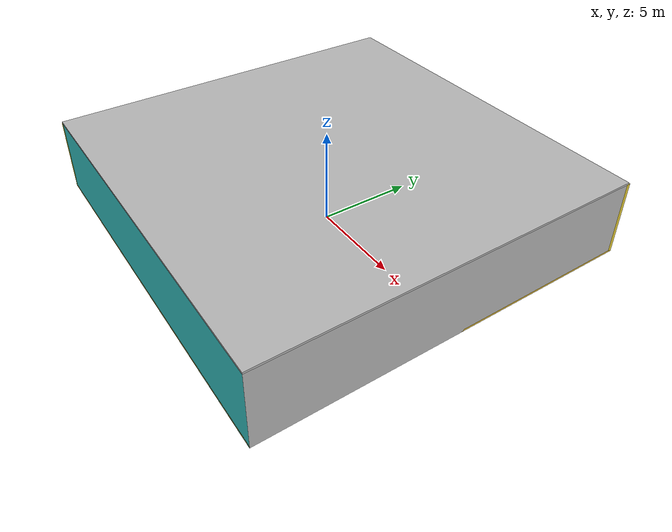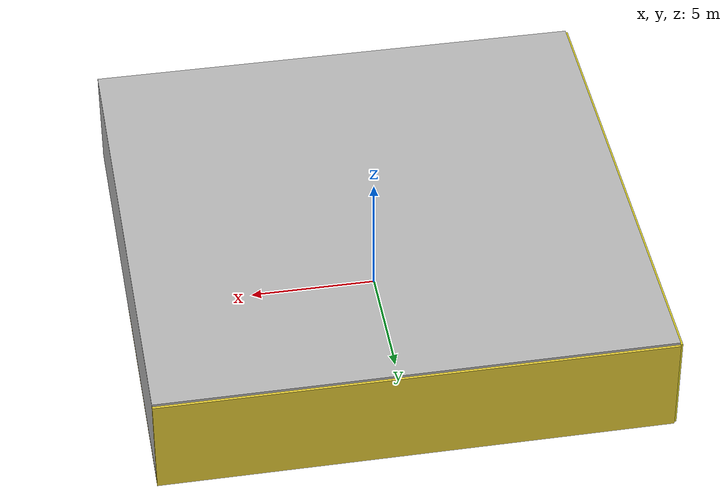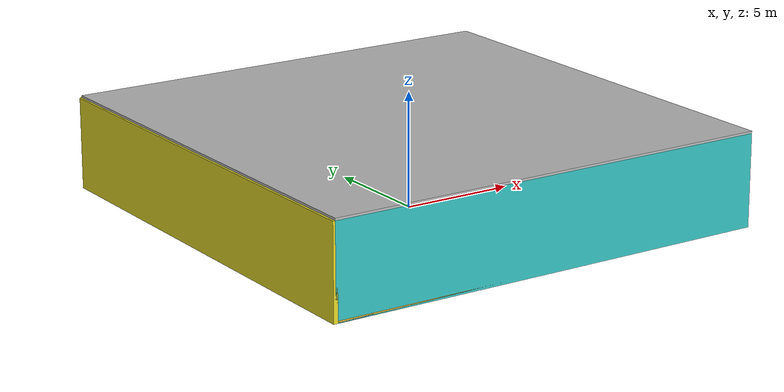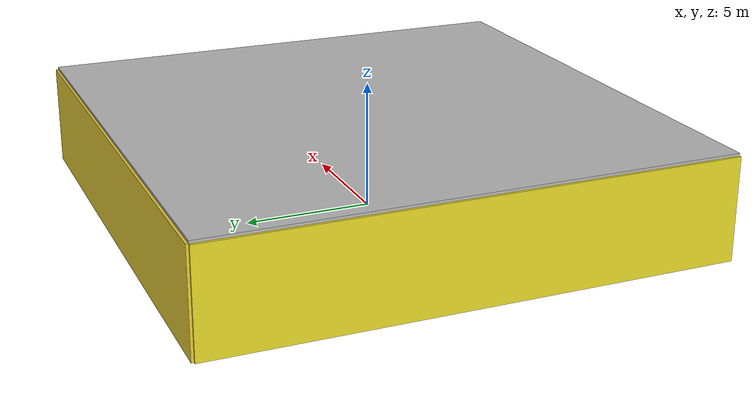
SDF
<sdf version="1.4">
 <world name="default">
  <physics type="ode">
   <max_step_size>0.001</max_step_size>
   <real_time_factor>1</real_time_factor>
   <real_time_update_rate>1000</real_time_update_rate>
   <gravity>0 0 -9.8</gravity>
  </physics>
  <scene><ambient>0.4 0.4 0.4 1</ambient><background>0.7 0.7 0.7 1</background><shadows>1</shadows></scene>
  <model name="Surrounding">
   <static>1</static>
   <link name="Ceiling">
    <collision name="Ceiling_Collision"><geometry><box><size>20 20 0.1</size></box></geometry></collision>
    <visual name="Ceiling_Visual">
     <geometry><box><size>20 20 0.1</size></box></geometry>
     <material>
      <script><uri>file://media/materials/scripts/gazebo.material</uri><name>Gazebo/JointAnchor</name></script>
     </material>
    </visual>
    <pose>0 0 4.05 0 0 0</pose>
   </link>
   <link name="Wall_South">
    <collision name="Wall_South_Collision">
     <geometry><box><size>20 0 4</size></box></geometry>
     <pose>0 0 2 0 -0 0</pose>
    </collision>
    <visual name="Wall_South_Visual">
     <pose>0 0 2 0 -0 0</pose>
     <geometry><box><size>20 0 4</size></box></geometry>
     <material>
      <script><uri>file://media/materials/scripts/gazebo.material</uri><name>Gazebo/Turquoise</name></script>
     </material>
    </visual>
    <velocity_decay><linear>0</linear><angular>0</angular></velocity_decay>
    <pose>0 -10 0 0 -0 0</pose>
   </link>
   <link name="Wall_East">
    <collision name="Wall_21_Collision">
     <geometry><box><size>20 0 4</size></box></geometry>
     <pose>0 0 2 0 -0 0</pose>
    </collision>
    <visual name="Wall_21_Visual">
     <pose>0 0 2 0 -0 0</pose>
     <geometry><box><size>20 0 4</size></box></geometry>
     <material>
      <script><uri>file://media/materials/scripts/gazebo.material</uri><name>Gazebo/PioneerBody</name></script>
     </material>
    </visual>
    <velocity_decay><linear>0</linear><angular>0</angular></velocity_decay>
    <pose>10 0 0 0 -0 1.5708</pose>
   </link>
   <link name="Wall_North">
    <collision name="Wall_22_Collision">
     <geometry><box><size>20 0.2 4</size></box></geometry>
     <pose>0 0 2 0 -0 0</pose>
    </collision>
    <visual name="Wall_22_Visual">
     <pose>0 0 2 0 -0 0</pose>
     <geometry><box><size>20 0.2 4</size></box></geometry>
     <material>
      <script><uri>file://media/materials/scripts/gazebo.material</uri><name>Gazebo/ZincYellow</name></script>
     </material>
    </visual>
    <velocity_decay><linear>0</linear><angular>0</angular></velocity_decay>
    <pose>0 10 0 0 -0 0</pose>
   </link>
   <link name="Wall_West">
    <collision name="Wall_23_Collision">
     <geometry><box><size>20 0.2 4</size></box></geometry>
     <pose>0 0 2 0 -0 0</pose>
    </collision>
    <visual name="Wall_23_Visual">
     <pose>0 0 2 0 -0 0</pose>
     <geometry><box><size>20 0.2 4</size></box></geometry>
     <material>
      <script><uri>file://media/materials/scripts/gazebo.material</uri><name>Gazebo/Yellow</name></script>
     </material>
    </visual>
    <velocity_decay><linear>0</linear><angular>0</angular></velocity_decay>
    <pose>-10 0 0 0 0 -1.5708</pose>
   </link>
   <link name="Ground_link">
    <collision name="collision">
     <pose>0 0 .05 0 -0 0</pose>
     <geometry><box><size>20 20 0.1</size></box></geometry>
    </collision>
    <visual name="visual">
     <pose>0 0 .05 0 -0 0</pose>
     <geometry><box><size>20 20 0.1</size></box></geometry>
     <material>
      <script><uri>file://media/materials/scripts/gazebo.material</uri><name>Gazebo/Gold</name></script>
     </material>
    </visual>
   </link>
   <static>1</static>
  </model>
  <spherical_coordinates>
   <surface_model>EARTH_WGS84</surface_model>
   <latitude_deg>0</latitude_deg>
   <longitude_deg>0</longitude_deg>
   <elevation>0</elevation>
   <heading_deg>0</heading_deg>
  </spherical_coordinates>
  <light name="lightball_0" type="diffuse">
   <diffuse>0.8 0.8 0.8 1</diffuse>
   <specular>0.2 0.2 0.2 1</specular>
   <attenuation>
    <range>100</range>
    <constant>0.7</constant>
    <linear>0.01</linear>
    <quadratic>0.001</quadratic>
   </attenuation>
   <direction>-0.5 0.1 -0.9</direction>
   <pose>5.11200261589 4.92102021932 1.85828250451 0 0 0</pose>
  </light>
  <light name="lightball_1" type="diffuse">
   <diffuse>0.8 0.8 0.8 1</diffuse>
   <specular>0.2 0.2 0.2 1</specular>
   <attenuation>
    <range>100</range>
    <constant>0.7</constant>
    <linear>0.01</linear>
    <quadratic>0.001</quadratic>
   </attenuation>
   <direction>-0.5 0.1 -0.9</direction>
   <pose>-1.24259219192 -8.80705801542 2.70611623916 0 0 0</pose>
  </light>
  <light name="lightball_2" type="diffuse">
   <diffuse>0.8 0.8 0.8 1</diffuse>
   <specular>0.2 0.2 0.2 1</specular>
   <attenuation>
    <range>100</range>
    <constant>0.7</constant>
    <linear>0.01</linear>
    <quadratic>0.001</quadratic>
   </attenuation>
   <direction>-0.5 0.1 -0.9</direction>
   <pose>2.45671474021 5.67533560198 0.960535026652 0 0 0</pose>
  </light>
  <light name="lightball_3" type="diffuse">
   <diffuse>0.8 0.8 0.8 1</diffuse>
   <specular>0.2 0.2 0.2 1</specular>
   <attenuation>
    <range>100</range>
    <constant>0.7</constant>
    <linear>0.01</linear>
    <quadratic>0.001</quadratic>
   </attenuation>
   <direction>-0.5 0.1 -0.9</direction>
   <pose>7.99301522389 -6.27408879506 2.38904917293 0 0 0</pose>
  </light>
  <light name="lightball_4" type="diffuse">
   <diffuse>0.8 0.8 0.8 1</diffuse>
   <specular>0.2 0.2 0.2 1</specular>
   <attenuation>
    <range>100</range>
    <constant>0.7</constant>
    <linear>0.01</linear>
    <quadratic>0.001</quadratic>
   </attenuation>
   <direction>-0.5 0.1 -0.9</direction>
   <pose>4.50593528932 3.06332732725 1.99436361959 0 0 0</pose>
  </light>
  <light name="lightball_5" type="diffuse">
   <diffuse>0.8 0.8 0.8 1</diffuse>
   <specular>0.2 0.2 0.2 1</specular>
   <attenuation>
    <range>100</range>
    <constant>0.7</constant>
    <linear>0.01</linear>
    <quadratic>0.001</quadratic>
   </attenuation>
   <direction>-0.5 0.1 -0.9</direction>
   <pose>4.62852091622 -5.45753806228 0.646458021993 0 0 0</pose>
  </light>
  <light name="lightball_6" type="diffuse">
   <diffuse>0.8 0.8 0.8 1</diffuse>
   <specular>0.2 0.2 0.2 1</specular>
   <attenuation>
    <range>100</range>
    <constant>0.7</constant>
    <linear>0.01</linear>
    <quadratic>0.001</quadratic>
   </attenuation>
   <direction>-0.5 0.1 -0.9</direction>
   <pose>1.69732900283 0.00462099488012 2.59929422451 0 0 0</pose>
  </light>
  <light name="lightball_7" type="diffuse">
   <diffuse>0.8 0.8 0.8 1</diffuse>
   <specular>0.2 0.2 0.2 1</specular>
   <attenuation>
    <range>100</range>
    <constant>0.7</constant>
    <linear>0.01</linear>
    <quadratic>0.001</quadratic>
   </attenuation>
   <direction>-0.5 0.1 -0.9</direction>
   <pose>2.51709605396 3.24244637966 1.76215181266 0 0 0</pose>
  </light>
  <light name="lightball_8" type="diffuse">
   <diffuse>0.8 0.8 0.8 1</diffuse>
   <specular>0.2 0.2 0.2 1</specular>
   <attenuation>
    <range>100</range>
    <constant>0.7</constant>
    <linear>0.01</linear>
    <quadratic>0.001</quadratic>
   </attenuation>
   <direction>-0.5 0.1 -0.9</direction>
   <pose>7.9926590733 -3.2336307417 1.97248029242 0 0 0</pose>
  </light>
  <light name="lightball_9" type="diffuse">
   <diffuse>0.8 0.8 0.8 1</diffuse>
   <specular>0.2 0.2 0.2 1</specular>
   <attenuation>
    <range>100</range>
    <constant>0.7</constant>
    <linear>0.01</linear>
    <quadratic>0.001</quadratic>
   </attenuation>
   <direction>-0.5 0.1 -0.9</direction>
   <pose>0.961213542021 6.86564690859 2.52970066726 0 0 0</pose>
  </light>
  <light name="lightball_10" type="diffuse">
   <diffuse>0.8 0.8 0.8 1</diffuse>
   <specular>0.2 0.2 0.2 1</specular>
   <attenuation>
    <range>100</range>
    <constant>0.7</constant>
    <linear>0.01</linear>
    <quadratic>0.001</quadratic>
   </attenuation>
   <direction>-0.5 0.1 -0.9</direction>
   <pose>1.10334325152 -1.56635284188 2.12616435359 0 0 0</pose>
  </light>
  <include>
   <uri>model://construction_cone</uri>
   <pose>-1.39249005326 -6.85881223623 0 0 0 2.89910353548</pose>
  </include>
  <include>
   <uri>model://textured_shapes</uri>
   <pose>-0.537690498059 6.83399006996 0 0 0 0.0925218274697</pose>
  </include>
  <include>
   <uri>model://robocup_3Dsim_goal</uri>
   <pose>0.584551475866 7.20931255902 0 0 0 3.10028240814</pose>
  </include>
  <include>
   <uri>model://robocup_3Dsim_goal</uri>
   <pose>4.63326534686 -5.5692559231 0 0 0 2.4228854443</pose>
  </include>
 </world>
</sdf>

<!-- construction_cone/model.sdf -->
<sdf version="1.5">
  <model name="Construction Cone">
    <link name="link">
      <collision name="collision">
        <geometry>
          <mesh>
            <scale>10 10 10</scale>
            <uri>file://isr-testbed/construction_cone/meshes/construction_cone.dae</uri>
          </mesh>
        </geometry>
      </collision>
      <visual name="visual">
        <geometry>
          <mesh>
            <scale>10 10 10</scale>
            <uri>file://isr-testbed/construction_cone/meshes/construction_cone.dae</uri>
          </mesh>
        </geometry>
      </visual>
    </link>
  </model>
</sdf>

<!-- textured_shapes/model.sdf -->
<sdf version="1.6">
  <model name="textured_shapes">
    <pose>0 0 0.5 0 0 0</pose>
    <link name="box">
      <pose>0 -1.5 0 0 0 0</pose>
      <collision name="collision">
        <geometry>
          <box>
            <size>1 1 1</size>
          </box>
        </geometry>
      </collision>
      <visual name="visual">
        <geometry>
          <box>
            <size>1 1 1</size>
          </box>
        </geometry>
        <material>
          <script>
            <uri>model://../model_source/models/textured_shapes/materials/scripts</uri>
            <uri>model://../model_source/models/textured_shapes/materials/textures</uri>
            <name>TexturedShape/Squares</name>
          </script>
        </material>
      </visual>
    </link>
    <link name="sphere">
      <collision name="collision">
        <geometry>
          <sphere>
            <radius>0.5</radius>
          </sphere>
        </geometry>
      </collision>
      <visual name="visual">
        <geometry>
          <sphere>
            <radius>0.5</radius>
          </sphere>
        </geometry>
        <material>
          <script>
            <uri>model://../model_source/models/textured_shapes/materials/scripts</uri>
            <uri>model://../model_source/models/textured_shapes/materials/textures</uri>
            <name>TexturedShape/Squares</name>
          </script>
        </material>
      </visual>
    </link>
    <link name="cylinder">
      <pose>0 1.5 0 0 0 0</pose>
      <collision name="collision">
        <geometry>
          <cylinder>
            <radius>0.5</radius>
            <length>1</length>
          </cylinder>
        </geometry>
      </collision>
      <visual name="visual">
        <geometry>
          <cylinder>
            <radius>0.5</radius>
            <length>1</length>
          </cylinder>
        </geometry>
        <material>
          <script>
            <uri>model://../model_source/models/textured_shapes/materials/scripts</uri>
            <uri>model://../model_source/models/textured_shapes/materials/textures</uri>
            <name>TexturedShape/Squares</name>
          </script>
        </material>
      </visual>
    </link>
  </model>
</sdf>

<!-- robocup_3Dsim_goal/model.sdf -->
<sdf version="1.5">
  <model name="robocup_3d_goal">
    <static>true</static>
    <link name="left_post">
      <pose>0 1.05 0.45 0 0 0</pose>
      <collision name="collision">
        <geometry>
          <cylinder>
            <radius>0.05</radius>
            <length>0.9</length>
          </cylinder>
        </geometry>
      </collision>
      <visual name="visual">
        <geometry>
          <cylinder>
            <radius>0.05</radius>
            <length>0.9</length>
          </cylinder>
        </geometry>
        <material>
          <script>
            <uri>file://media/materials/scripts/gazebo.material</uri>
            <name>Gazebo/ZincYellow</name>
          </script>
        </material>
      </visual>
    </link>
    <link name="left_support_horiz_lower">
      <pose>0.30 1.05 0.01 0 0 0</pose>
      <collision name="collision">
        <geometry>
          <box>
            <size>0.50 0.02 0.02</size>
          </box>
        </geometry>
      </collision>
      <visual name="visual">
        <geometry>
          <box>
            <size>0.50 0.02 0.02</size>
          </box>
        </geometry>
        <material>
          <script>
            <uri>file://media/materials/scripts/gazebo.material</uri>
            <name>Gazebo/White</name>
          </script>
        </material>
      </visual>
    </link>
    <link name="left_support_horiz_upper">
      <pose>0.30 1.05 0.79 0 0 0</pose>
      <collision name="collision">
        <geometry>
          <box>
            <size>0.50 0.02 0.02</size>
          </box>
        </geometry>
      </collision>
      <visual name="visual">
        <geometry>
          <box>
            <size>0.50 0.02 0.02</size>
          </box>
        </geometry>
        <material>
          <script>
            <uri>file://media/materials/scripts/gazebo.material</uri>
            <name>Gazebo/White</name>
          </script>
        </material>
      </visual>
    </link>
    <link name="left_support_vertical">
      <pose>0.56 1.05 0.4 0 1.5708 0</pose>
      <collision name="collision">
        <geometry>
          <box>
            <size>0.80 0.02 0.02</size>
          </box>
        </geometry>
      </collision>
      <visual name="visual">
        <geometry>
          <box>
            <size>0.80 0.02 0.02</size>
          </box>
        </geometry>
        <material>
          <script>
            <uri>file://media/materials/scripts/gazebo.material</uri>
            <name>Gazebo/White</name>
          </script>
        </material>
      </visual>
    </link>
    <link name="right_support_horiz_lower">
      <pose>0.30 -1.05 0.01 0 0 0</pose>
      <collision name="collision">
        <geometry>
          <box>
            <size>0.50 0.02 0.02</size>
          </box>
        </geometry>
      </collision>
      <visual name="visual">
        <geometry>
          <box>
            <size>0.50 0.02 0.02</size>
          </box>
        </geometry>
        <material>
          <script>
            <uri>file://media/materials/scripts/gazebo.material</uri>
            <name>Gazebo/White</name>
          </script>
        </material>
      </visual>
    </link>
    <link name="right_support_horiz_upper">
      <pose>0.30 -1.05 0.79 0 0 0</pose>
      <collision name="collision">
        <geometry>
          <box>
            <size>0.50 0.02 0.02</size>
          </box>
        </geometry>
      </collision>
      <visual name="visual">
        <geometry>
          <box>
            <size>0.50 0.02 0.02</size>
          </box>
        </geometry>
        <material>
          <script>
            <uri>file://media/materials/scripts/gazebo.material</uri>
            <name>Gazebo/White</name>
          </script>
        </material>
      </visual>
    </link>
    <link name="right_support_vertical">
      <pose>0.56 -1.05 0.4 0 1.5708 0</pose>
      <collision name="collision">
        <geometry>
          <box>
            <size>0.80 0.02 0.02</size>
          </box>
        </geometry>
      </collision>
      <visual name="visual">
        <geometry>
          <box>
            <size>0.80 0.02 0.02</size>
          </box>
        </geometry>
        <material>
          <script>
            <uri>file://media/materials/scripts/gazebo.material</uri>
            <name>Gazebo/White</name>
          </script>
        </material>
      </visual>
    </link>
    <link name="center_support_horiz_lower">
      <pose>0.56 0 0.01 0 1.5708 0</pose>
      <collision name="collision">
        <geometry>
          <box>
            <size>0.02 2.08 0.02</size>
          </box>
        </geometry>
      </collision>
      <visual name="visual">
        <geometry>
          <box>
            <size>0.02 2.08 0.02</size>
          </box>
        </geometry>
        <material>
          <script>
            <uri>file://media/materials/scripts/gazebo.material</uri>
            <name>Gazebo/White</name>
          </script>
        </material>
      </visual>
    </link>
    <link name="center_support_horiz_upper">
      <pose>0.56 0 0.79 0 1.5708 0</pose>
      <collision name="collision">
        <geometry>
          <box>
            <size>0.02 2.08 0.02</size>
          </box>
        </geometry>
      </collision>
      <visual name="visual">
        <geometry>
          <box>
            <size>0.02 2.08 0.02</size>
          </box>
        </geometry>
        <material>
          <script>
            <uri>file://media/materials/scripts/gazebo.material</uri>
            <name>Gazebo/White</name>
          </script>
        </material>
      </visual>
    </link>
    <link name="right_post">
      <pose>0 -1.05 0.45 0 0 0</pose>
      <collision name="collision">
        <geometry>
          <cylinder>
            <radius>0.05</radius>
            <length>0.9</length>
          </cylinder>
        </geometry>
      </collision>
      <visual name="visual">
        <geometry>
          <cylinder>
            <radius>0.05</radius>
            <length>0.9</length>
          </cylinder>
        </geometry>
        <material>
          <script>
            <uri>file://media/materials/scripts/gazebo.material</uri>
            <name>Gazebo/ZincYellow</name>
          </script>
        </material>
      </visual>
    </link>
    <link name="crossbar">
      <pose>0 0 0.85 1.57 1.57 0</pose>
      <collision name="collision">
        <geometry>
          <cylinder>
            <radius>0.05</radius>
            <length>2.0</length>
          </cylinder>
        </geometry>
      </collision>
      <visual name="visual">
        <geometry>
          <cylinder>
            <radius>0.05</radius>
            <length>2.0</length>
          </cylinder>
        </geometry>
        <material>
          <script>
            <uri>file://media/materials/scripts/gazebo.material</uri>
            <name>Gazebo/ZincYellow</name>
          </script>
        </material>
      </visual>
    </link>
    <link name="center_net">
      <pose>0.56 0 0.40 0 0 0</pose>
      <collision name="collision">
        <geometry>
          <box>
            <size>0.01 2.1 0.80</size>
          </box>
        </geometry>
      </collision>
      <visual name="visual">
        <geometry>
          <box>
            <size>0.01 2.1 0.80</size>
          </box>
        </geometry>
        <material>
          <script>
            <uri>model://../model_source/models/robocup09_spl_field/materials/scripts/</uri>
            <uri>model://../model_source/models/robocup09_spl_field/materials/textures/</uri>
            <name>RoboCup/Net</name>
          </script>
        </material>
      </visual>
    </link>
    <link name="left_net">
      <pose>0.30 1.05 0.40 0 0 0</pose>
      <collision name="collision">
        <geometry>
          <box>
            <size>0.50 0.01 0.76</size>
          </box>
        </geometry>
      </collision>
      <visual name="visual">
        <geometry>
          <box>
            <size>0.50 0.01 0.76</size>
          </box>
        </geometry>
        <material>
          <script>
            <uri>model://../model_source/models/robocup09_spl_field/materials/scripts/</uri>
            <uri>model://../model_source/models/robocup09_spl_field/materials/textures/</uri>
            <name>RoboCup/Net</name>
          </script>
        </material>
      </visual>
    </link>
    <link name="right_net">
      <pose>0.30 -1.05 0.40 0 0 0</pose>
      <collision name="collision">
        <geometry>
          <box>
            <size>0.50 0.01 0.76</size>
          </box>
        </geometry>
      </collision>
      <visual name="visual">
        <geometry>
          <box>
            <size>0.50 0.01 0.76</size>
          </box>
        </geometry>
        <material>
          <script>
            <uri>model://../model_source/models/robocup09_spl_field/materials/scripts/</uri>
            <uri>model://../model_source/models/robocup09_spl_field/materials/textures/</uri>
            <name>RoboCup/Net</name>
          </script>
        </material>
      </visual>
    </link>
  </model>
</sdf>
